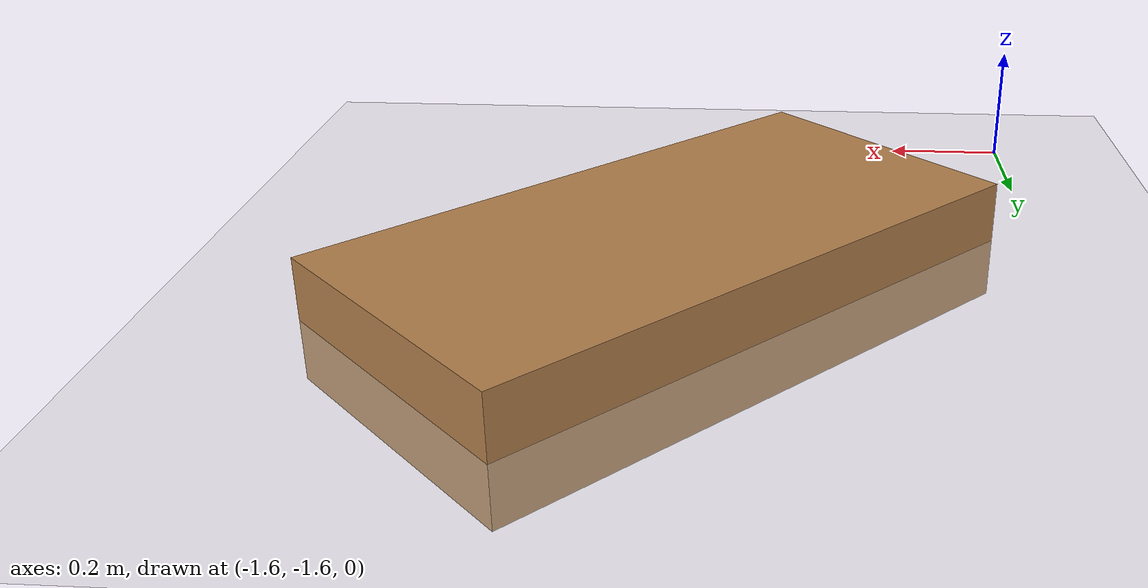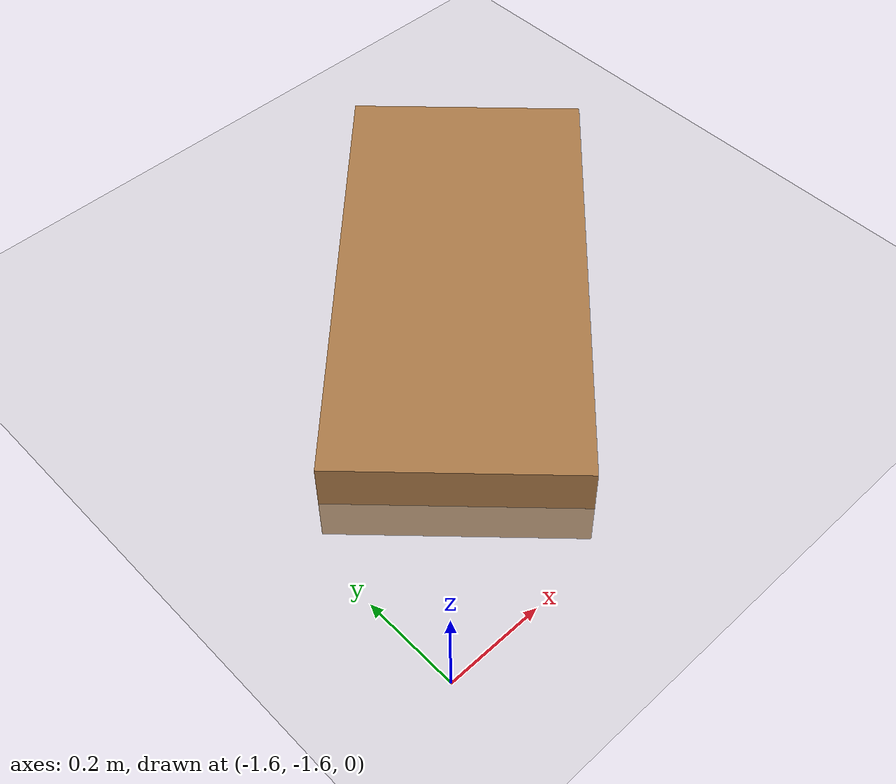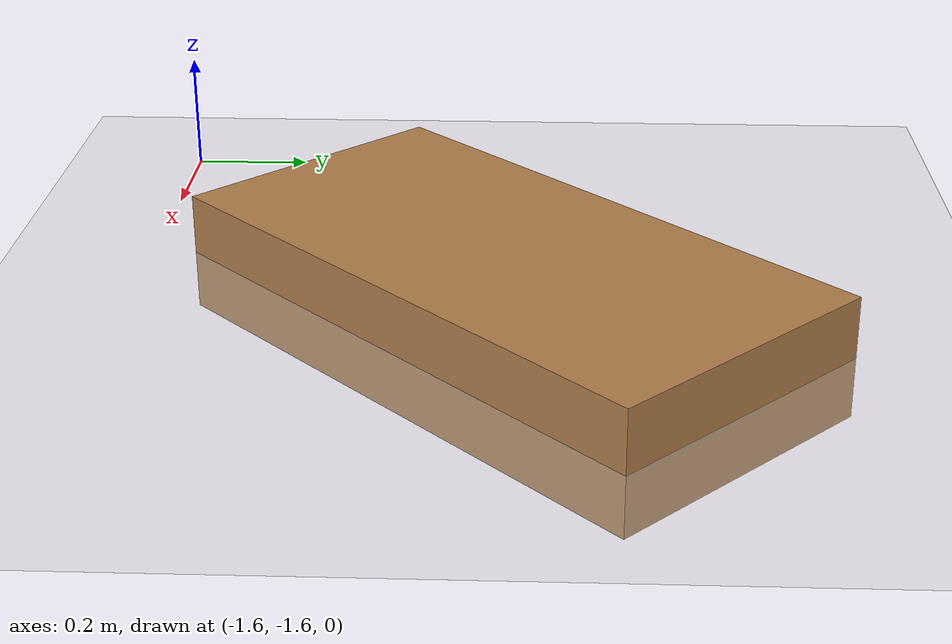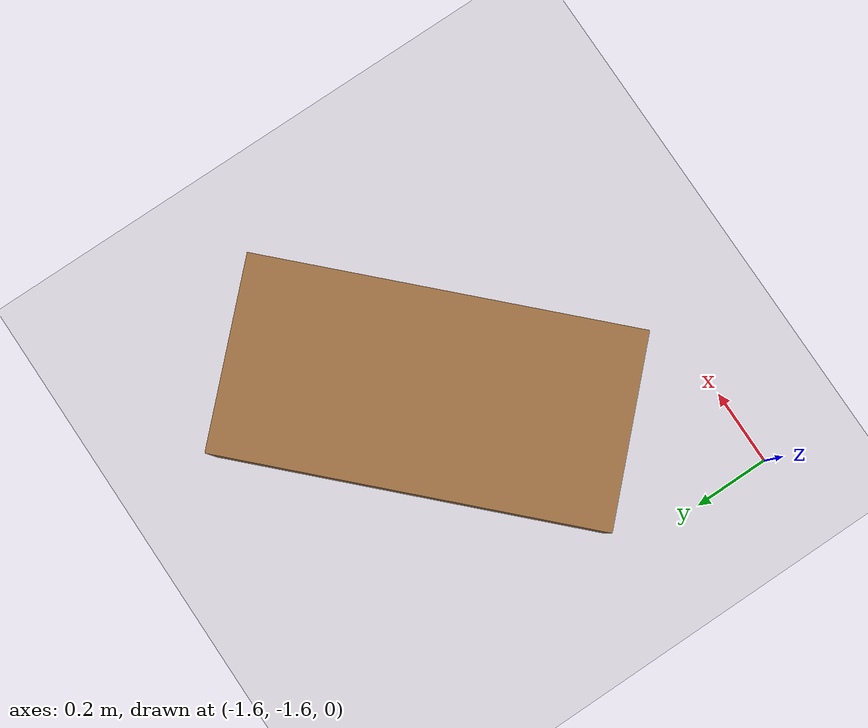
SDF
<sdf version="1.5">
 <world name="default">
  <model name="ground_plane">
   <static>1</static>
   <link name="link">
    <collision name="collision">
     <geometry><plane><normal>0 0 1</normal><size>100 100</size></plane></geometry>
     <surface><friction><ode><mu>100</mu><mu2>50</mu2></ode></friction></surface>
    </collision>
    <visual name="visual">
     <cast_shadows>0</cast_shadows>
     <geometry><plane><normal>0 0 1</normal><size>100 100</size></plane></geometry>
     <material>
      <script><uri>file://media/materials/scripts/gazebo.material</uri><name>Gazebo/Grey</name></script>
     </material>
    </visual>
    <velocity_decay><linear>0</linear><angular>0</angular></velocity_decay>
   </link>
  </model>
  <model name="my_box">
   <pose>-1 -1 0 0 0 0.785</pose>
   <static>0</static>
   <link name="link">
    <inertial>
     <mass>0.3</mass>
     <inertia><ixx>0.00725</ixx><ixy>0</ixy><ixz>0</ixz><iyy>0.026</iyy><iyz>0</iyz><izz>0.03125</izz></inertia>
    </inertial>
    <collision name="collision"><geometry><box><size>1 0.5 0.2</size></box></geometry></collision>
    <visual name="visual">
     <geometry><box><size>1 0.5 0.2</size></box></geometry>
     <material>
      <script><uri>file://media/materials/scripts/gazebo.material</uri><name>Gazebo/Wood</name></script>
     </material>
    </visual>
   </link>
  </model>
 </world>
</sdf>
